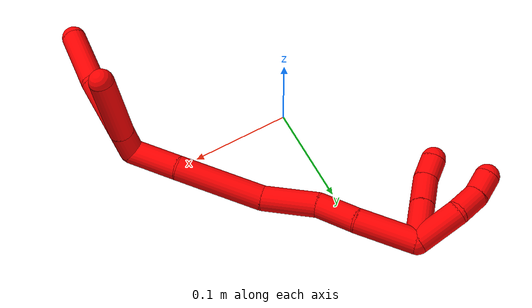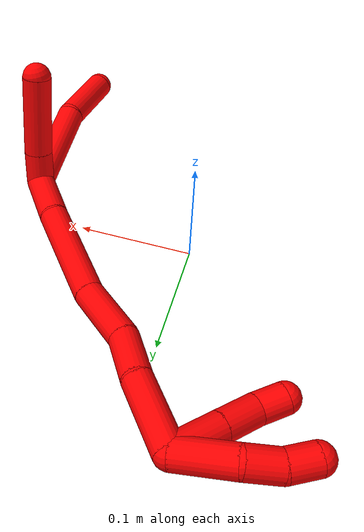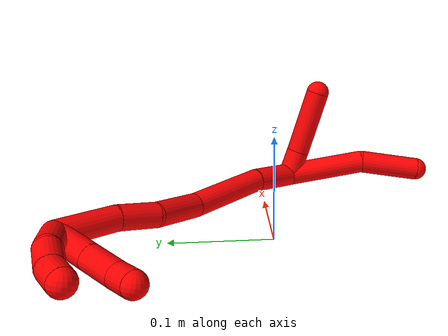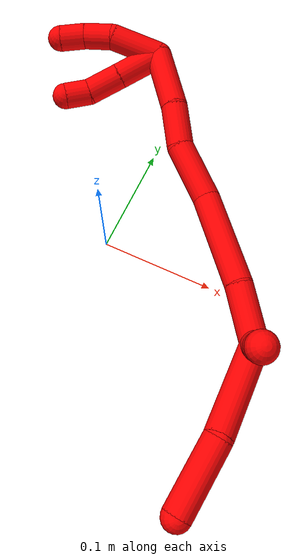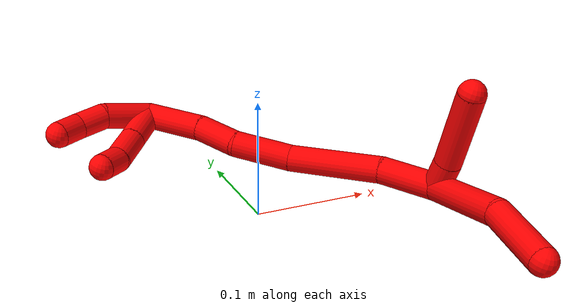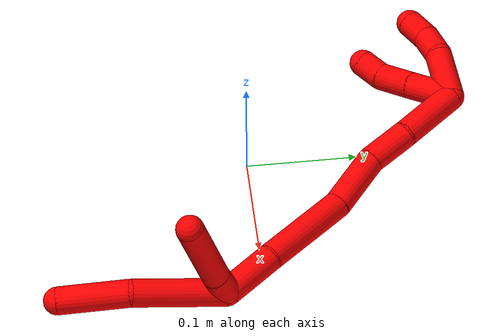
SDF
<sdf version="1.7">
 <world name="default">
  <model name="2">
   <static>0</static>
   <link name="2">
    <collision name="collision-cylinder-e_1_2_8">
     <pose>-0.009472 -0.03938 0.013061 1.25055 -0.224453 -0.162359</pose>
     <geometry><cylinder><radius>0.0125</radius><length>0.085114</length></cylinder></geometry>
     <surface>
      <friction><ode><mu>1.16</mu><mu2>1.16</mu2><slip1>0</slip1><slip2>0</slip2></ode></friction>
      <contact><ode><kp>1e+06</kp><kd>1</kd><max_vel>0</max_vel><min_depth>0.001</min_depth></ode></contact>
     </surface>
    </collision>
    <visual name="visual-cylinder-e_1_2_8">
     <pose>-0.009472 -0.03938 0.013061 1.25055 -0.224453 -0.162359</pose>
     <geometry><cylinder><radius>0.0125</radius><length>0.085114</length></cylinder></geometry>
     <material><ambient>1 0 0 1</ambient></material>
    </visual>
    <collision name="collision-cylinder-e_2_8_6">
     <pose>-0.028005 -0.109912 0.0263 1.56509 -0.283037 -0.281447</pose>
     <geometry><cylinder><radius>0.0125</radius><length>0.064886</length></cylinder></geometry>
     <surface>
      <friction><ode><mu>1.16</mu><mu2>1.16</mu2><slip1>0</slip1><slip2>0</slip2></ode></friction>
      <contact><ode><kp>1e+06</kp><kd>1</kd><max_vel>0</max_vel><min_depth>0.001</min_depth></ode></contact>
     </surface>
    </collision>
    <visual name="visual-cylinder-e_2_8_6">
     <pose>-0.028005 -0.109912 0.0263 1.56509 -0.283037 -0.281447</pose>
     <geometry><cylinder><radius>0.0125</radius><length>0.064886</length></cylinder></geometry>
     <material><ambient>1 0 0 1</ambient></material>
    </visual>
    <collision name="collision-cylinder-e_1_2_9">
     <pose>-0.002068 -0.002341 0.014325 0.161997 -0.141497 -0.011505</pose>
     <geometry><cylinder><radius>0.0125</radius><length>0.029322</length></cylinder></geometry>
     <surface>
      <friction><ode><mu>1.16</mu><mu2>1.16</mu2><slip1>0</slip1><slip2>0</slip2></ode></friction>
      <contact><ode><kp>1e+06</kp><kd>1</kd><max_vel>0</max_vel><min_depth>0.001</min_depth></ode></contact>
     </surface>
    </collision>
    <visual name="visual-cylinder-e_1_2_9">
     <pose>-0.002068 -0.002341 0.014325 0.161997 -0.141497 -0.011505</pose>
     <geometry><cylinder><radius>0.0125</radius><length>0.029322</length></cylinder></geometry>
     <material><ambient>1 0 0 1</ambient></material>
    </visual>
    <collision name="collision-cylinder-e_2_9_5">
     <pose>-0.011536 -0.008429 0.063001 0.108638 -0.21098 -0.011514</pose>
     <geometry><cylinder><radius>0.0125</radius><length>0.070678</length></cylinder></geometry>
     <surface>
      <friction><ode><mu>1.16</mu><mu2>1.16</mu2><slip1>0</slip1><slip2>0</slip2></ode></friction>
      <contact><ode><kp>1e+06</kp><kd>1</kd><max_vel>0</max_vel><min_depth>0.001</min_depth></ode></contact>
     </surface>
    </collision>
    <visual name="visual-cylinder-e_2_9_5">
     <pose>-0.011536 -0.008429 0.063001 0.108638 -0.21098 -0.011514</pose>
     <geometry><cylinder><radius>0.0125</radius><length>0.070678</length></cylinder></geometry>
     <material><ambient>1 0 0 1</ambient></material>
    </visual>
    <collision name="collision-cylinder-e_1_2_10">
     <pose>-0.010919 0.023344 -0.00436 -1.75545 -0.430981 0.515399</pose>
     <geometry><cylinder><radius>0.0125</radius><length>0.052275</length></cylinder></geometry>
     <surface>
      <friction><ode><mu>1.16</mu><mu2>1.16</mu2><slip1>0</slip1><slip2>0</slip2></ode></friction>
      <contact><ode><kp>1e+06</kp><kd>1</kd><max_vel>0</max_vel><min_depth>0.001</min_depth></ode></contact>
     </surface>
    </collision>
    <visual name="visual-cylinder-e_1_2_10">
     <pose>-0.010919 0.023344 -0.00436 -1.75545 -0.430981 0.515399</pose>
     <geometry><cylinder><radius>0.0125</radius><length>0.052275</length></cylinder></geometry>
     <material><ambient>1 0 0 1</ambient></material>
    </visual>
    <collision name="collision-cylinder-e_2_10_11">
     <pose>-0.042004 0.083939 -0.022768 -1.93142 -0.468845 0.664944</pose>
     <geometry><cylinder><radius>0.0125</radius><length>0.089256</length></cylinder></geometry>
     <surface>
      <friction><ode><mu>1.16</mu><mu2>1.16</mu2><slip1>0</slip1><slip2>0</slip2></ode></friction>
      <contact><ode><kp>1e+06</kp><kd>1</kd><max_vel>0</max_vel><min_depth>0.001</min_depth></ode></contact>
     </surface>
    </collision>
    <visual name="visual-cylinder-e_2_10_11">
     <pose>-0.042004 0.083939 -0.022768 -1.93142 -0.468845 0.664944</pose>
     <geometry><cylinder><radius>0.0125</radius><length>0.089256</length></cylinder></geometry>
     <material><ambient>1 0 0 1</ambient></material>
    </visual>
    <collision name="collision-cylinder-e_3_11_12">
     <pose>-0.079226 0.143132 -0.040403 -1.73281 -0.654378 0.759917</pose>
     <geometry><cylinder><radius>0.0125</radius><length>0.056045</length></cylinder></geometry>
     <surface>
      <friction><ode><mu>1.16</mu><mu2>1.16</mu2><slip1>0</slip1><slip2>0</slip2></ode></friction>
      <contact><ode><kp>1e+06</kp><kd>1</kd><max_vel>0</max_vel><min_depth>0.001</min_depth></ode></contact>
     </surface>
    </collision>
    <visual name="visual-cylinder-e_3_11_12">
     <pose>-0.079226 0.143132 -0.040403 -1.73281 -0.654378 0.759917</pose>
     <geometry><cylinder><radius>0.0125</radius><length>0.056045</length></cylinder></geometry>
     <material><ambient>1 0 0 1</ambient></material>
    </visual>
    <collision name="collision-cylinder-e_4_12_13">
     <pose>-0.103614 0.184203 -0.045667 -1.65827 -0.364758 0.397311</pose>
     <geometry><cylinder><radius>0.0125</radius><length>0.041108</length></cylinder></geometry>
     <surface>
      <friction><ode><mu>1.16</mu><mu2>1.16</mu2><slip1>0</slip1><slip2>0</slip2></ode></friction>
      <contact><ode><kp>1e+06</kp><kd>1</kd><max_vel>0</max_vel><min_depth>0.001</min_depth></ode></contact>
     </surface>
    </collision>
    <visual name="visual-cylinder-e_4_12_13">
     <pose>-0.103614 0.184203 -0.045667 -1.65827 -0.364758 0.397311</pose>
     <geometry><cylinder><radius>0.0125</radius><length>0.041108</length></cylinder></geometry>
     <material><ambient>1 0 0 1</ambient></material>
    </visual>
    <collision name="collision-cylinder-e_5_13_1">
     <pose>-0.1244 0.230058 -0.054024 -1.81571 -0.454311 0.575612</pose>
     <geometry><cylinder><radius>0.0125</radius><length>0.061317</length></cylinder></geometry>
     <surface>
      <friction><ode><mu>1.16</mu><mu2>1.16</mu2><slip1>0</slip1><slip2>0</slip2></ode></friction>
      <contact><ode><kp>1e+06</kp><kd>1</kd><max_vel>0</max_vel><min_depth>0.001</min_depth></ode></contact>
     </surface>
    </collision>
    <visual name="visual-cylinder-e_5_13_1">
     <pose>-0.1244 0.230058 -0.054024 -1.81571 -0.454311 0.575612</pose>
     <geometry><cylinder><radius>0.0125</radius><length>0.061317</length></cylinder></geometry>
     <material><ambient>1 0 0 1</ambient></material>
    </visual>
    <collision name="collision-cylinder-e_1_1_14">
     <pose>-0.15356 0.242751 -0.06572 1.91409 -0.811618 -1.09527</pose>
     <geometry><cylinder><radius>0.0125</radius><length>0.043301</length></cylinder></geometry>
     <surface>
      <friction><ode><mu>1.16</mu><mu2>1.16</mu2><slip1>0</slip1><slip2>0</slip2></ode></friction>
      <contact><ode><kp>1e+06</kp><kd>1</kd><max_vel>0</max_vel><min_depth>0.001</min_depth></ode></contact>
     </surface>
    </collision>
    <visual name="visual-cylinder-e_1_1_14">
     <pose>-0.15356 0.242751 -0.06572 1.91409 -0.811618 -1.09527</pose>
     <geometry><cylinder><radius>0.0125</radius><length>0.043301</length></cylinder></geometry>
     <material><ambient>1 0 0 1</ambient></material>
    </visual>
    <collision name="collision-cylinder-e_2_14_15">
     <pose>-0.181406 0.218023 -0.074471 1.90676 -0.820016 -1.09862</pose>
     <geometry><cylinder><radius>0.0125</radius><length>0.033211</length></cylinder></geometry>
     <surface>
      <friction><ode><mu>1.16</mu><mu2>1.16</mu2><slip1>0</slip1><slip2>0</slip2></ode></friction>
      <contact><ode><kp>1e+06</kp><kd>1</kd><max_vel>0</max_vel><min_depth>0.001</min_depth></ode></contact>
     </surface>
    </collision>
    <visual name="visual-cylinder-e_2_14_15">
     <pose>-0.181406 0.218023 -0.074471 1.90676 -0.820016 -1.09862</pose>
     <geometry><cylinder><radius>0.0125</radius><length>0.033211</length></cylinder></geometry>
     <material><ambient>1 0 0 1</ambient></material>
    </visual>
    <collision name="collision-cylinder-e_3_15_4">
     <pose>-0.20402 0.202028 -0.078598 1.64469 -1.10124 -1.16826</pose>
     <geometry><cylinder><radius>0.0125</radius><length>0.023488</length></cylinder></geometry>
     <surface>
      <friction><ode><mu>1.16</mu><mu2>1.16</mu2><slip1>0</slip1><slip2>0</slip2></ode></friction>
      <contact><ode><kp>1e+06</kp><kd>1</kd><max_vel>0</max_vel><min_depth>0.001</min_depth></ode></contact>
     </surface>
    </collision>
    <visual name="visual-cylinder-e_3_15_4">
     <pose>-0.20402 0.202028 -0.078598 1.64469 -1.10124 -1.16826</pose>
     <geometry><cylinder><radius>0.0125</radius><length>0.023488</length></cylinder></geometry>
     <material><ambient>1 0 0 1</ambient></material>
    </visual>
    <collision name="collision-cylinder-e_1_1_16">
     <pose>-0.16145 0.259605 -0.061586 -1.87387 -1.44619 1.75268</pose>
     <geometry><cylinder><radius>0.0125</radius><length>0.047559</length></cylinder></geometry>
     <surface>
      <friction><ode><mu>1.16</mu><mu2>1.16</mu2><slip1>0</slip1><slip2>0</slip2></ode></friction>
      <contact><ode><kp>1e+06</kp><kd>1</kd><max_vel>0</max_vel><min_depth>0.001</min_depth></ode></contact>
     </surface>
    </collision>
    <visual name="visual-cylinder-e_1_1_16">
     <pose>-0.16145 0.259605 -0.061586 -1.87387 -1.44619 1.75268</pose>
     <geometry><cylinder><radius>0.0125</radius><length>0.047559</length></cylinder></geometry>
     <material><ambient>1 0 0 1</ambient></material>
    </visual>
    <collision name="collision-cylinder-e_2_16_17">
     <pose>-0.198354 0.261041 -0.06671 2.82609 -1.24732 -2.70638</pose>
     <geometry><cylinder><radius>0.0125</radius><length>0.028074</length></cylinder></geometry>
     <surface>
      <friction><ode><mu>1.16</mu><mu2>1.16</mu2><slip1>0</slip1><slip2>0</slip2></ode></friction>
      <contact><ode><kp>1e+06</kp><kd>1</kd><max_vel>0</max_vel><min_depth>0.001</min_depth></ode></contact>
     </surface>
    </collision>
    <visual name="visual-cylinder-e_2_16_17">
     <pose>-0.198354 0.261041 -0.06671 2.82609 -1.24732 -2.70638</pose>
     <geometry><cylinder><radius>0.0125</radius><length>0.028074</length></cylinder></geometry>
     <material><ambient>1 0 0 1</ambient></material>
    </visual>
    <collision name="collision-cylinder-e_3_17_3">
     <pose>-0.223022 0.255604 -0.07268 1.97393 -1.20075 -1.60651</pose>
     <geometry><cylinder><radius>0.0125</radius><length>0.024367</length></cylinder></geometry>
     <surface>
      <friction><ode><mu>1.16</mu><mu2>1.16</mu2><slip1>0</slip1><slip2>0</slip2></ode></friction>
      <contact><ode><kp>1e+06</kp><kd>1</kd><max_vel>0</max_vel><min_depth>0.001</min_depth></ode></contact>
     </surface>
    </collision>
    <visual name="visual-cylinder-e_3_17_3">
     <pose>-0.223022 0.255604 -0.07268 1.97393 -1.20075 -1.60651</pose>
     <geometry><cylinder><radius>0.0125</radius><length>0.024367</length></cylinder></geometry>
     <material><ambient>1 0 0 1</ambient></material>
    </visual>
    <collision name="collision-sphere-3">
     <pose>-0.23438 0.251551 -0.074409 0 -0 0</pose>
     <geometry><sphere><radius>0.0125</radius></sphere></geometry>
     <surface>
      <friction><ode><mu>1.16</mu><mu2>1.16</mu2><slip1>0</slip1><slip2>0</slip2></ode></friction>
      <contact><ode><kp>1e+06</kp><kd>1</kd><max_vel>0</max_vel><min_depth>0.001</min_depth></ode></contact>
     </surface>
    </collision>
    <visual name="visual-sphere-3">
     <pose>-0.23438 0.251551 -0.074409 0 -0 0</pose>
     <geometry><sphere><radius>0.0125</radius></sphere></geometry>
     <material><ambient>1 0 0 1</ambient></material>
    </visual>
    <collision name="collision-sphere-17">
     <pose>-0.211663 0.259657 -0.070951 0 -0 0</pose>
     <geometry><sphere><radius>0.0125</radius></sphere></geometry>
     <surface>
      <friction><ode><mu>1.16</mu><mu2>1.16</mu2><slip1>0</slip1><slip2>0</slip2></ode></friction>
      <contact><ode><kp>1e+06</kp><kd>1</kd><max_vel>0</max_vel><min_depth>0.001</min_depth></ode></contact>
     </surface>
    </collision>
    <visual name="visual-sphere-17">
     <pose>-0.211663 0.259657 -0.070951 0 -0 0</pose>
     <geometry><sphere><radius>0.0125</radius></sphere></geometry>
     <material><ambient>1 0 0 1</ambient></material>
    </visual>
    <collision name="collision-sphere-16">
     <pose>-0.185045 0.262426 -0.062468 0 -0 0</pose>
     <geometry><sphere><radius>0.0125</radius></sphere></geometry>
     <surface>
      <friction><ode><mu>1.16</mu><mu2>1.16</mu2><slip1>0</slip1><slip2>0</slip2></ode></friction>
      <contact><ode><kp>1e+06</kp><kd>1</kd><max_vel>0</max_vel><min_depth>0.001</min_depth></ode></contact>
     </surface>
    </collision>
    <visual name="visual-sphere-16">
     <pose>-0.185045 0.262426 -0.062468 0 -0 0</pose>
     <geometry><sphere><radius>0.0125</radius></sphere></geometry>
     <material><ambient>1 0 0 1</ambient></material>
    </visual>
    <collision name="collision-sphere-4">
     <pose>-0.214493 0.196729 -0.07899 0 -0 0</pose>
     <geometry><sphere><radius>0.0125</radius></sphere></geometry>
     <surface>
      <friction><ode><mu>1.16</mu><mu2>1.16</mu2><slip1>0</slip1><slip2>0</slip2></ode></friction>
      <contact><ode><kp>1e+06</kp><kd>1</kd><max_vel>0</max_vel><min_depth>0.001</min_depth></ode></contact>
     </surface>
    </collision>
    <visual name="visual-sphere-4">
     <pose>-0.214493 0.196729 -0.07899 0 -0 0</pose>
     <geometry><sphere><radius>0.0125</radius></sphere></geometry>
     <material><ambient>1 0 0 1</ambient></material>
    </visual>
    <collision name="collision-sphere-15">
     <pose>-0.193547 0.207328 -0.078206 0 -0 0</pose>
     <geometry><sphere><radius>0.0125</radius></sphere></geometry>
     <surface>
      <friction><ode><mu>1.16</mu><mu2>1.16</mu2><slip1>0</slip1><slip2>0</slip2></ode></friction>
      <contact><ode><kp>1e+06</kp><kd>1</kd><max_vel>0</max_vel><min_depth>0.001</min_depth></ode></contact>
     </surface>
    </collision>
    <visual name="visual-sphere-15">
     <pose>-0.193547 0.207328 -0.078206 0 -0 0</pose>
     <geometry><sphere><radius>0.0125</radius></sphere></geometry>
     <material><ambient>1 0 0 1</ambient></material>
    </visual>
    <collision name="collision-sphere-14">
     <pose>-0.169265 0.228718 -0.070736 0 -0 0</pose>
     <geometry><sphere><radius>0.0125</radius></sphere></geometry>
     <surface>
      <friction><ode><mu>1.16</mu><mu2>1.16</mu2><slip1>0</slip1><slip2>0</slip2></ode></friction>
      <contact><ode><kp>1e+06</kp><kd>1</kd><max_vel>0</max_vel><min_depth>0.001</min_depth></ode></contact>
     </surface>
    </collision>
    <visual name="visual-sphere-14">
     <pose>-0.169265 0.228718 -0.070736 0 -0 0</pose>
     <geometry><sphere><radius>0.0125</radius></sphere></geometry>
     <material><ambient>1 0 0 1</ambient></material>
    </visual>
    <collision name="collision-sphere-1">
     <pose>-0.137854 0.256784 -0.060704 0 -0 0</pose>
     <geometry><sphere><radius>0.0125</radius></sphere></geometry>
     <surface>
      <friction><ode><mu>1.16</mu><mu2>1.16</mu2><slip1>0</slip1><slip2>0</slip2></ode></friction>
      <contact><ode><kp>1e+06</kp><kd>1</kd><max_vel>0</max_vel><min_depth>0.001</min_depth></ode></contact>
     </surface>
    </collision>
    <visual name="visual-sphere-1">
     <pose>-0.137854 0.256784 -0.060704 0 -0 0</pose>
     <geometry><sphere><radius>0.0125</radius></sphere></geometry>
     <material><ambient>1 0 0 1</ambient></material>
    </visual>
    <collision name="collision-sphere-13">
     <pose>-0.110946 0.203332 -0.047345 0 -0 0</pose>
     <geometry><sphere><radius>0.0125</radius></sphere></geometry>
     <surface>
      <friction><ode><mu>1.16</mu><mu2>1.16</mu2><slip1>0</slip1><slip2>0</slip2></ode></friction>
      <contact><ode><kp>1e+06</kp><kd>1</kd><max_vel>0</max_vel><min_depth>0.001</min_depth></ode></contact>
     </surface>
    </collision>
    <visual name="visual-sphere-13">
     <pose>-0.110946 0.203332 -0.047345 0 -0 0</pose>
     <geometry><sphere><radius>0.0125</radius></sphere></geometry>
     <material><ambient>1 0 0 1</ambient></material>
    </visual>
    <collision name="collision-sphere-12">
     <pose>-0.096282 0.165075 -0.043989 0 -0 0</pose>
     <geometry><sphere><radius>0.0125</radius></sphere></geometry>
     <surface>
      <friction><ode><mu>1.16</mu><mu2>1.16</mu2><slip1>0</slip1><slip2>0</slip2></ode></friction>
      <contact><ode><kp>1e+06</kp><kd>1</kd><max_vel>0</max_vel><min_depth>0.001</min_depth></ode></contact>
     </surface>
    </collision>
    <visual name="visual-sphere-12">
     <pose>-0.096282 0.165075 -0.043989 0 -0 0</pose>
     <geometry><sphere><radius>0.0125</radius></sphere></geometry>
     <material><ambient>1 0 0 1</ambient></material>
    </visual>
    <collision name="collision-sphere-11">
     <pose>-0.062169 0.12119 -0.036816 0 -0 0</pose>
     <geometry><sphere><radius>0.0125</radius></sphere></geometry>
     <surface>
      <friction><ode><mu>1.16</mu><mu2>1.16</mu2><slip1>0</slip1><slip2>0</slip2></ode></friction>
      <contact><ode><kp>1e+06</kp><kd>1</kd><max_vel>0</max_vel><min_depth>0.001</min_depth></ode></contact>
     </surface>
    </collision>
    <visual name="visual-sphere-11">
     <pose>-0.062169 0.12119 -0.036816 0 -0 0</pose>
     <geometry><sphere><radius>0.0125</radius></sphere></geometry>
     <material><ambient>1 0 0 1</ambient></material>
    </visual>
    <collision name="collision-sphere-8">
     <pose>-0.018944 -0.078761 0.026122 0 -0 0</pose>
     <geometry><sphere><radius>0.0125</radius></sphere></geometry>
     <surface>
      <friction><ode><mu>1.16</mu><mu2>1.16</mu2><slip1>0</slip1><slip2>0</slip2></ode></friction>
      <contact><ode><kp>1e+06</kp><kd>1</kd><max_vel>0</max_vel><min_depth>0.001</min_depth></ode></contact>
     </surface>
    </collision>
    <visual name="visual-sphere-8">
     <pose>-0.018944 -0.078761 0.026122 0 -0 0</pose>
     <geometry><sphere><radius>0.0125</radius></sphere></geometry>
     <material><ambient>1 0 0 1</ambient></material>
    </visual>
    <collision name="collision-sphere-2">
     <geometry><sphere><radius>0.0125</radius></sphere></geometry>
     <surface>
      <friction><ode><mu>1.16</mu><mu2>1.16</mu2><slip1>0</slip1><slip2>0</slip2></ode></friction>
      <contact><ode><kp>1e+06</kp><kd>1</kd><max_vel>0</max_vel><min_depth>0.001</min_depth></ode></contact>
     </surface>
    </collision>
    <visual name="visual-sphere-2">
     <geometry><sphere><radius>0.0125</radius></sphere></geometry>
     <material><ambient>1 0 0 1</ambient></material>
    </visual>
    <collision name="collision-sphere-9">
     <pose>-0.004135 -0.004682 0.028649 0 -0 0</pose>
     <geometry><sphere><radius>0.0125</radius></sphere></geometry>
     <surface>
      <friction><ode><mu>1.16</mu><mu2>1.16</mu2><slip1>0</slip1><slip2>0</slip2></ode></friction>
      <contact><ode><kp>1e+06</kp><kd>1</kd><max_vel>0</max_vel><min_depth>0.001</min_depth></ode></contact>
     </surface>
    </collision>
    <visual name="visual-sphere-9">
     <pose>-0.004135 -0.004682 0.028649 0 -0 0</pose>
     <geometry><sphere><radius>0.0125</radius></sphere></geometry>
     <material><ambient>1 0 0 1</ambient></material>
    </visual>
    <collision name="collision-sphere-6">
     <pose>-0.037065 -0.141063 0.026478 0 -0 0</pose>
     <geometry><sphere><radius>0.0125</radius></sphere></geometry>
     <surface>
      <friction><ode><mu>1.16</mu><mu2>1.16</mu2><slip1>0</slip1><slip2>0</slip2></ode></friction>
      <contact><ode><kp>1e+06</kp><kd>1</kd><max_vel>0</max_vel><min_depth>0.001</min_depth></ode></contact>
     </surface>
    </collision>
    <visual name="visual-sphere-6">
     <pose>-0.037065 -0.141063 0.026478 0 -0 0</pose>
     <geometry><sphere><radius>0.0125</radius></sphere></geometry>
     <material><ambient>1 0 0 1</ambient></material>
    </visual>
    <collision name="collision-sphere-5">
     <pose>-0.018936 -0.012175 0.097352 0 -0 0</pose>
     <geometry><sphere><radius>0.0125</radius></sphere></geometry>
     <surface>
      <friction><ode><mu>1.16</mu><mu2>1.16</mu2><slip1>0</slip1><slip2>0</slip2></ode></friction>
      <contact><ode><kp>1e+06</kp><kd>1</kd><max_vel>0</max_vel><min_depth>0.001</min_depth></ode></contact>
     </surface>
    </collision>
    <visual name="visual-sphere-5">
     <pose>-0.018936 -0.012175 0.097352 0 -0 0</pose>
     <geometry><sphere><radius>0.0125</radius></sphere></geometry>
     <material><ambient>1 0 0 1</ambient></material>
    </visual>
    <collision name="collision-sphere-10">
     <pose>-0.021838 0.046687 -0.00872 0 -0 0</pose>
     <geometry><sphere><radius>0.0125</radius></sphere></geometry>
     <surface>
      <friction><ode><mu>1.16</mu><mu2>1.16</mu2><slip1>0</slip1><slip2>0</slip2></ode></friction>
      <contact><ode><kp>1e+06</kp><kd>1</kd><max_vel>0</max_vel><min_depth>0.001</min_depth></ode></contact>
     </surface>
    </collision>
    <visual name="visual-sphere-10">
     <pose>-0.021838 0.046687 -0.00872 0 -0 0</pose>
     <geometry><sphere><radius>0.0125</radius></sphere></geometry>
     <material><ambient>1 0 0 1</ambient></material>
    </visual>
    <inertial>
     <pose>-0.080392 0.100887 -0.021015 0 -0 0</pose>
     <mass>0.75</mass>
     <inertia>
      <ixx>0.000212</ixx>
      <ixy>0</ixy>
      <ixz>0</ixz>
      <iyy>0.000127</iyy>
      <iyz>0</iyz>
      <izz>9.6e-05</izz>
     </inertia>
    </inertial>
   </link>
   <pose>0.154718 -0.034388 0.011301 0.207456 0.180359 0.224784</pose>
  </model>
 </world>
</sdf>
